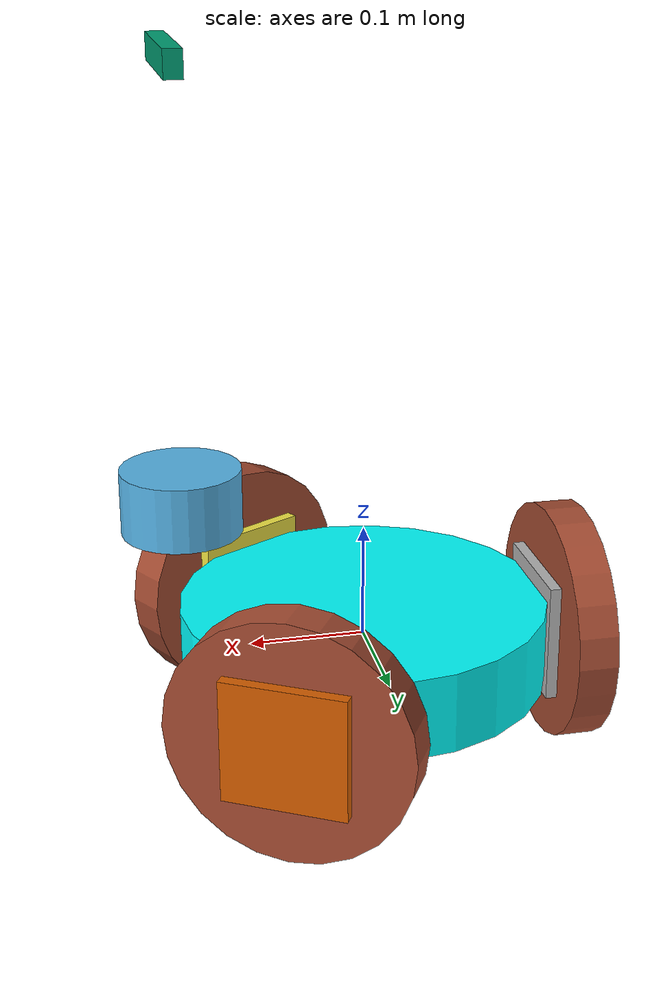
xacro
<?xml version="1.0"?>
<robot name="zuuu" xmlns:xacro="http://ros.org/wiki/xacro">

  <xacro:arg name="use_fake_components" default="false"/>
  <xacro:arg name="use_fixed_wheels" default="true"/>
  <xacro:arg name="use_ros_control" default="true"/>

  <!-- Define robot constants -->
  <xacro:property name="base_radius" value="0.16"/>
  <xacro:property name="base_top_height" value="0.1425"/>
  <xacro:property name="base_depth" value="0.07"/>

  <xacro:property name="wheel_radius" value="0.105"/>
  <xacro:property name="wheel_width" value="0.035"/>
  <xacro:property name="wheel_radial_dist" value="0.1805"/>
  <xacro:property name="wheel_zoff" value="0.20"/>
  <xacro:property name="global_damping" value="0.5"/>
  <xacro:property name="global_friction" value="0.1"/>

  <!-- Define some commonly used intertial properties  -->
  <xacro:macro name="box_inertia" params="m w h d">
    <inertial>
      <origin xyz="0 0 0" rpy="${pi/2} 0 ${pi/2}"/>
      <mass value="${m}"/>
      <inertia ixx="${(m/12) * (h*h + d*d)}" ixy="0.0" ixz="0.0" iyy="${(m/12) * (w*w + d*d)}" iyz="0.0" izz="${(m/12) * (w*w + h*h)}"/>
    </inertial>
  </xacro:macro>

  <xacro:macro name="cylinder_inertia" params="m r h">
    <inertial>
      <origin xyz="0 0 0" rpy="${pi/2} 0 0" />
      <mass value="${m}"/>
      <inertia ixx="${(m/12) * (3*r*r + h*h)}" ixy = "0" ixz = "0" iyy="${(m/12) * (3*r*r + h*h)}" iyz = "0" izz="${(m/2) * (r*r)}"/>
    </inertial>
  </xacro:macro>

  <xacro:macro name="sphere_inertia" params="m r">
    <inertial>
      <mass value="${m}"/>
      <inertia ixx="${(2/5) * m * (r*r)}" ixy="0.0" ixz="0.0" iyy="${(2/5) * m * (r*r)}" iyz="0.0" izz="${(2/5) * m * (r*r)}"/>
    </inertial>
  </xacro:macro>

  <!-- Robot Footprint -->
  <link name="base_footprint"/>

  <joint name="base_footprint_joint" type="fixed">
    <origin rpy="0 0 0" xyz="0 0 0"/>
    <axis xyz="0 0 ${(base_top_height-base_depth/2)}"/>
    <parent link="base_footprint"/>
    <child link="base_link"/>
  </joint>

  <!-- Robot Base -->
  <link name="base_link">
    <visual>
      <geometry>
        <cylinder radius="${base_radius}" length="${base_depth}"/>
      </geometry>
      <material name="Cyan">
        <color rgba="0 1.0 1.0 1.0"/>
      </material>
    </visual>

    <collision>
      <geometry>
        <cylinder radius="${base_radius}" length="${base_depth}"/>
      </geometry>
    </collision>

    <xacro:cylinder_inertia m="20" r="${base_radius}" h="${base_depth}"/>
  </link>

  <!-- Wheels -->
  <xacro:macro name="wheel" params="prefix yaw_angle">
    <link name="${prefix}_link">
      <visual>
        <origin xyz="0 0 0" rpy="${pi/2} 0 0"/>
        <geometry>
            <cylinder radius="${wheel_radius}" length="${wheel_width}"/>
            <box size="${wheel_radius} ${wheel_radius} ${wheel_width+0.02}"/>
        </geometry>
        <material name="Bricks"></material>
      </visual>

      <collision>
        <origin xyz="0 0 0" rpy="${pi/2} 0 0"/>
        <geometry>
          <cylinder radius="${wheel_radius}" length="${wheel_width}"/>
        </geometry>
      </collision>

      <xacro:cylinder_inertia m="0.5" r="${wheel_radius}" h="${wheel_width}"/>
    </link>

    <xacro:if value="$(arg use_fixed_wheels)">
        <joint name="${prefix}_joint" type="fixed">
          <parent link="base_link"/>
          <child link="${prefix}_link"/>
          <origin xyz="${wheel_radial_dist*cos(yaw_angle)} ${-wheel_radial_dist*sin(yaw_angle)} ${-((base_top_height-base_depth/2)- wheel_radius)}" rpy="0 0 ${pi/2-yaw_angle}"/>
          <axis xyz="0 1 0"/>
          <joint_properties damping="${global_damping}" friction="${global_friction}"/>
        </joint>
        <!-- No friction because we suck and everything is lame -->
        <gazebo reference="${prefix}_link">
          <mu1 value="0.0"/>
          <mu2 value="0.0"/>
          <kp value="10000000.0" />
          <kd value="1.0" />
          <fdir1 value="1 0 0"/>
          <maxVel>1.0</maxVel>
          <minDepth>0.0</minDepth>
          <turnGravityOff>false</turnGravityOff>
        </gazebo>
    </xacro:if>

    <xacro:unless value="$(arg use_fixed_wheels)">
      <joint name="${prefix}_joint" type="continuous">
        <parent link="base_link"/>
        <child link="${prefix}_link"/>
        <origin xyz="${wheel_radial_dist*cos(yaw_angle)} ${-wheel_radial_dist*sin(yaw_angle)} ${-((base_top_height-base_depth/2)- wheel_radius)}" rpy="0 0 ${pi/2-yaw_angle}"/>
        <axis xyz="0 1 0"/>
        <joint_properties damping="${global_damping}" friction="${global_friction}"/>
      </joint>
      <!-- Physics because we're smart and handsome -->
      <gazebo reference="${prefix}_link">
        <mu1 value="1.0"/>
        <mu2 value="0.0"/>
        <kp value="10000000.0" />
        <kd value="1.0" />
        <fdir1 value="1 0 0"/>
        <maxVel>5.0</maxVel>
        <minDepth>0.002</minDepth>
        <turnGravityOff>false</turnGravityOff>
      </gazebo>
    </xacro:unless>

    <!-- Just so that we can see the wheels turn when they turn -->
    <link name="${prefix}_extra_link">
      <visual>
        <origin xyz="0 0 0" rpy="${pi/2} 0 0"/>
        <geometry>
            <box size="${wheel_radius} ${wheel_radius} ${wheel_width+0.02}"/>
        </geometry>
      </visual>
    </link>
    <joint name="${prefix}_extra_joint" type="fixed">
      <origin rpy="0 0 0" xyz="0 0 0"/>
      <axis xyz="0 0 0"/>
      <parent link="${prefix}_link"/>
      <child link="${prefix}_extra_link"/>
    </joint>

  </xacro:macro>

  <!-- Wheel 1 at the back, 2 on the right, 3 on the left -->
  <xacro:wheel prefix="drivewhl1" yaw_angle="${pi/3}" />
  <xacro:wheel prefix="drivewhl2" yaw_angle="${5*pi/3}" />
  <xacro:wheel prefix="drivewhl3" yaw_angle="${pi}" />

  <gazebo>
    <plugin name="object_controller" filename="libgazebo_ros_planar_move.so">

      <commandTopic>cmd_vel</commandTopic>
      <odometryTopic>odom</odometryTopic>
      <robotNamespace> </robotNamespace>

      <!-- Set control loop update rate -->
      <odometryRate>100</odometryRate>
      <!-- Set odom publish rate -->
      <publish_rate>100</publish_rate>

      <!-- Set if odom required -->
      <publish_odom>true</publish_odom>
      <publish_odom_tf>true</publish_odom_tf>

      <!-- Frame IDs -->
      <odometryFrame>odom</odometryFrame>
      <robotBaseFrame>base_link</robotBaseFrame>

      <!-- Set odom covariance -->
      <covariance_x>0.0001</covariance_x>
      <covariance_y>0.0001</covariance_y>
      <covariance_yaw>0.01</covariance_yaw>

    </plugin>
  </gazebo>

  <xacro:if value="$(arg use_ros_control)">
    <ros2_control name="zuuu_ros2_control" type="system">
      <hardware>
        <xacro:if value="$(arg use_fake_components)">
          <plugin>fake_components/GenericSystem</plugin>
        </xacro:if>
        <xacro:unless value="$(arg use_fake_components)">
          <plugin>gazebo_ros2_control/GazeboSystem</plugin>
        </xacro:unless>

      </hardware>
      <joint name="drivewhl1_joint">
        <command_interface name="velocity">
            <param name="min">-1</param>
            <param name="max">1</param>
          </command_interface>
          <state_interface name="position"/>
          <state_interface name="velocity"/>
      </joint>
      <joint name="drivewhl2_joint">
        <command_interface name="velocity">
            <param name="min">-1</param>
            <param name="max">1</param>
          </command_interface>
          <state_interface name="position"/>
          <state_interface name="velocity"/>
      </joint>
      <joint name="drivewhl3_joint">
        <command_interface name="velocity">
            <param name="min">-1</param>
            <param name="max">1</param>
          </command_interface>
          <state_interface name="position"/>
          <state_interface name="velocity"/>
      </joint>
    </ros2_control>
    <!-- Calling the pluging that will parse the ros2_control tags -->
    <xacro:unless value="$(arg use_fake_components)">
      <gazebo>
        <plugin filename="libgazebo_ros2_control.so" name="gazebo_ros2_control">
          <parameters>$(find zuuu_description)/config/zuuu_controllers.yaml</parameters>
        </plugin>
      </gazebo>
    </xacro:unless>
  </xacro:if>

  <link name="imu_link">
    <visual>
      <geometry>
        <box size="0.1 0.1 0.02"/>
      </geometry>
    </visual>

    <collision>
      <geometry>
        <box size="0.1 0.1 0.1"/>
      </geometry>
    </collision>

    <xacro:box_inertia m="0.1" w="0.1" d="0.1" h="0.1"/>
  </link>

  <joint name="imu_joint" type="fixed">
    <parent link="base_link"/>
    <child link="imu_link"/>
    <origin xyz="0 0 0.01"/>
  </joint>

  <gazebo reference="imu_link">
    <sensor name="imu_sensor" type="imu">
      <plugin filename="libgazebo_ros_imu_sensor.so" name="imu_plugin">
        <ros>
          <namespace></namespace>
          <remapping>~/out:=imu</remapping>
        </ros>
        <initial_orientation_as_reference>false</initial_orientation_as_reference>
      </plugin>
      <always_on>true</always_on>
      <update_rate>100</update_rate>
      <visualize>true</visualize>
     <imu>
     	<angular_velocity>
     	  <x>
     	    <noise type="gaussian">
              <mean>0.0</mean>
              <stddev>2e-4</stddev>
              <bias_mean>0.0000075</bias_mean>
              <bias_stddev>0.0000008</bias_stddev>
            </noise>
          </x>
          <y>
            <noise type="gaussian">
              <mean>0.0</mean>
              <stddev>2e-4</stddev>
              <bias_mean>0.0000075</bias_mean>
              <bias_stddev>0.0000008</bias_stddev>
            </noise>
          </y>
          <z>
            <noise type="gaussian">
              <mean>0.0</mean>
              <stddev>2e-4</stddev>
              <bias_mean>0.0000075</bias_mean>
              <bias_stddev>0.0000008</bias_stddev>
            </noise>
          </z>
        </angular_velocity>
        <linear_acceleration>
          <x>
            <noise type="gaussian">
              <mean>0.0</mean>
              <stddev>1.7e-2</stddev>
              <bias_mean>0.1</bias_mean>
              <bias_stddev>0.001</bias_stddev>
            </noise>
          </x>
          <y>
            <noise type="gaussian">
              <mean>0.0</mean>
              <stddev>1.7e-2</stddev>
              <bias_mean>0.1</bias_mean>
              <bias_stddev>0.001</bias_stddev>
            </noise>
          </y>
          <z>
            <noise type="gaussian">
              <mean>0.0</mean>
              <stddev>1.7e-2</stddev>
              <bias_mean>0.1</bias_mean>
              <bias_stddev>0.001</bias_stddev>
            </noise>
          </z>
        </linear_acceleration>
      </imu>
    </sensor>
  </gazebo>

 <link name="lidar_link">
    <inertial>
      <origin xyz="0 0 0" rpy="0 0 0"/>
      <mass value="0.125"/>
      <inertia ixx="0.001"  ixy="0"  ixz="0" iyy="0.001" iyz="0" izz="0.001" />
    </inertial>

    <collision>
      <origin xyz="0 0 0" rpy="0 0 0"/>
      <geometry>
         <cylinder radius="0.0508" length="0.055"/>
      </geometry>
    </collision>

    <visual>
      <origin xyz="0 0 0" rpy="0 0 0"/>
      <geometry>
         <cylinder radius="0.0508" length="0.055"/>
      </geometry>
    </visual>
  </link>

  <joint name="lidar_joint" type="fixed">
    <parent link="base_link"/>
    <child link="lidar_link"/>
    <origin xyz="0.155 0 ${-(base_top_height-base_depth/2)+base_top_height+0.105}" rpy="0 0 0"/>
  </joint>

  <gazebo reference="lidar_link">
    <sensor name="lidar" type="ray">
      <always_on>true</always_on>
      <visualize>true</visualize>
      <update_rate>5</update_rate>
      <ray>
        <scan>
          <horizontal>
            <samples>360</samples>
            <resolution>1.000000</resolution>
            <min_angle>0.000000</min_angle>
            <max_angle>6.280000</max_angle>
          </horizontal>
        </scan>
        <range>
          <min>0.120000</min>
          <max>20</max>
          <resolution>0.015000</resolution>
        </range>
        <noise>
          <type>gaussian</type>
          <mean>0.0</mean>
          <stddev>0.01</stddev>
        </noise>
      </ray>
      <plugin name="scan" filename="libgazebo_ros_ray_sensor.so">
        <ros>
          <remapping>~/out:=scan</remapping>
        </ros>
        <output_type>sensor_msgs/LaserScan</output_type>
        <frame_name>lidar_link</frame_name>
      </plugin>
    </sensor>
  </gazebo>

  <link name="camera_link">
    <visual>
      <origin xyz="0 0 0" rpy="0 0 0"/>
      <geometry>
        <box size="0.015 0.130 0.022"/>
      </geometry>
    </visual>

    <collision>
      <origin xyz="0 0 0" rpy="0 0 0"/>
      <geometry>
        <box size="0.015 0.130 0.022"/>
      </geometry>
    </collision>

    <inertial>
      <origin xyz="0 0 0" rpy="0 0 0"/>
      <mass value="0.035"/>
      <inertia ixx="0.001"  ixy="0"  ixz="0" iyy="0.001" iyz="0" izz="0.001" />
    </inertial>
  </link>

  <joint name="camera_joint" type="fixed">
    <parent link="base_link"/>
    <child link="camera_link"/>
    <origin xyz="0.155 0 0.5" rpy="0 0 0"/>
  </joint>

  <link name="camera_depth_frame"/>

  <joint name="camera_depth_joint" type="fixed">
    <origin xyz="0 0 0" rpy="${-pi/2} 0 ${-pi/2}"/>
    <parent link="camera_link"/>
    <child link="camera_depth_frame"/>
  </joint>

  <gazebo reference="camera_link">
    <sensor name="depth_camera" type="depth">
      <visualize>true</visualize>
      <update_rate>30.0</update_rate>
      <camera name="camera">
        <horizontal_fov>1.047198</horizontal_fov>
        <image>
          <width>640</width>
          <height>480</height>
          <format>R8G8B8</format>
        </image>
        <clip>
          <near>0.05</near>
          <far>3</far>
        </clip>
      </camera>
      <plugin name="depth_camera_controller" filename="libgazebo_ros_camera.so">
        <baseline>0.2</baseline>
        <alwaysOn>true</alwaysOn>
        <updateRate>0.0</updateRate>
        <frame_name>camera_depth_frame</frame_name>
        <pointCloudCutoff>0.5</pointCloudCutoff>
        <pointCloudCutoffMax>3.0</pointCloudCutoffMax>
        <distortionK1>0</distortionK1>
        <distortionK2>0</distortionK2>
        <distortionK3>0</distortionK3>
        <distortionT1>0</distortionT1>
        <distortionT2>0</distortionT2>
        <CxPrime>0</CxPrime>
        <Cx>0</Cx>
        <Cy>0</Cy>
        <focalLength>0</focalLength>
        <hackBaseline>0</hackBaseline>
      </plugin>
    </sensor>
  </gazebo>

</robot>
